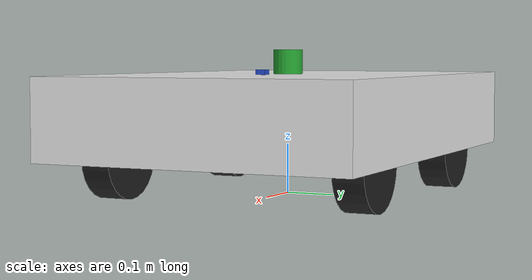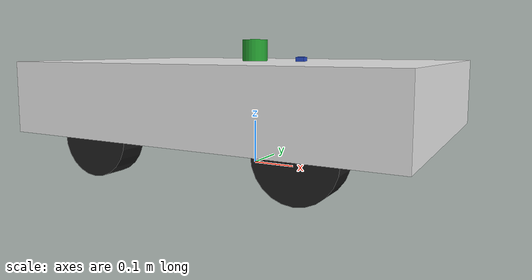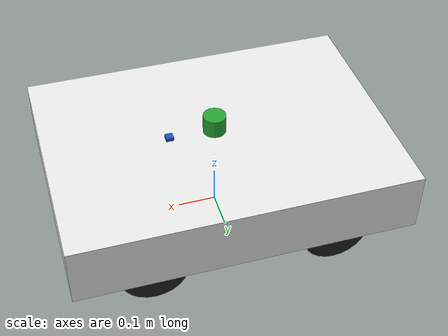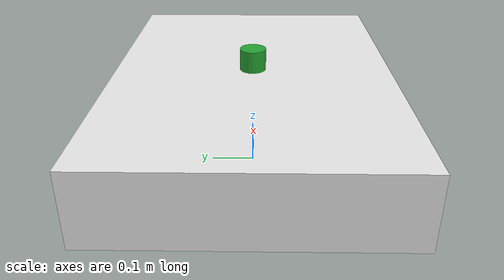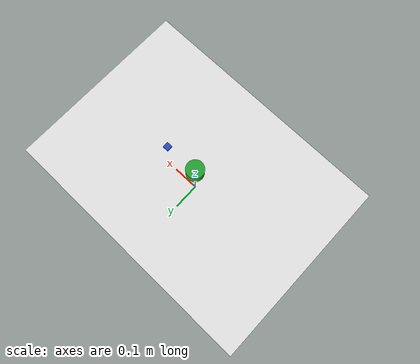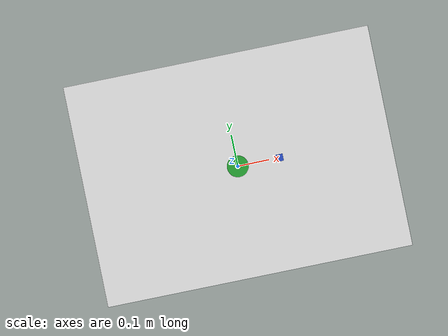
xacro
<?xml version="1.0"?>
<!-- Basic differential drive mobile base -->
<robot xmlns:xacro="http://www.ros.org/wiki/xacro" name="diffdrive_robot">
  <xacro:arg name="prefix" default="" />

  <xacro:include filename="$(find hoverboard_driver)/urdf/diffbot_description.urdf.xacro" />

  <!-- Import Rviz colors -->
  <xacro:include filename="$(find hoverboard_driver)/urdf/diffbot.materials.xacro" />

  <!-- Import diffbot ros2_control description -->
  <xacro:include filename="$(find hoverboard_driver)/ros2_control/hoverboard_driver.ros2_control.xacro"/>

  <xacro:diffbot prefix="$(arg prefix)" />

  <xacro:hoverboard_driver_ros2_control name="front_hoverboard" prefix="front_" device="/dev/front_wheel"/>
  <xacro:hoverboard_driver_ros2_control name="rear_hoverboard" prefix="rear_" device="/dev/rear_wheel"/>

</robot>

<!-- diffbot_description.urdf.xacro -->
<robot xmlns:xacro="http://www.ros.org/wiki/xacro">

  <xacro:macro name="diffbot" params="prefix">

  <!-- Constants for robot dimensions -->
  <xacro:property name="PI" value="3.1415926535897931"/>
  <xacro:property name="base_mass" value="10.0" /> <!-- arbitrary value for base mass -->
  <xacro:property name="base_width" value="0.635" />
  <xacro:property name="base_length" value="0.880" />
  <xacro:property name="base_height" value="0.16" />
  <xacro:property name="wheelbase" value="0.470" />
  <xacro:property name="wheel_mass" value="1.0" /> <!-- arbitrary value for wheel mass -->
  <xacro:property name="wheel_len" value="0.060" />
  <xacro:property name="wheel_separation" value="0.520"/>
  <xacro:property name="wheel_radius" value="0.085" />
  <xacro:property name="lidar_height" value="0.05" />
  <xacro:property name="lidar_radius" value="0.03" />

  <!-- Base Link -->
  <link name="${prefix}base_link" />

  <!-- Base Footprint Link-->

  <!-- Chassis -->

  <link name="${prefix}chassis_link">
    <collision>
      <origin xyz="0 0 0" rpy="0 0 0"/>
      <geometry>
        <box size="${base_length} ${base_width} ${base_height}"/>
      </geometry>
    </collision>

    <visual>
      <origin xyz="0 0 0" rpy="0 0 0"/>
      <geometry>
        <box size="${base_length} ${base_width} ${base_height}"/>
      </geometry>
      <material name="white"/>
    </visual>

    <inertial>
      <origin xyz="0 0 0" rpy="0 0 0"/>
      <mass value="${base_mass}"/>
        <inertia
          ixx="0.000270" ixy="0.0" ixz="0.0"
          iyy="0.000270" iyz="0.0"
          izz="0.000426"/>
    </inertial>
  </link>

    <joint name="${prefix}chassis_joint" type="fixed">
      <parent link="${prefix}base_link"/>
      <child link="${prefix}chassis_link"/>
      <origin xyz="0 0 ${base_height/2 + wheel_radius}" rpy="0 0 0"/>
      <axis xyz="0 0 1"/>
      <dynamics damping="0.2"/>
    </joint>

    <gazebo reference="${prefix}chassis_joint">
        <material>Gazebo/White</material>
    </gazebo>

    <!-- rear wheels -->

    <!-- rear right wheel -->

    <link name="${prefix}rear_right_wheel">
      <collision>
        <origin xyz="0 0 0" rpy="${PI/2} 0 ${PI/2}"/>
        <geometry>
          <cylinder length="${wheel_len}" radius="${wheel_radius}"/>
        </geometry>
      </collision>

      <visual>
        <origin xyz="0 0 0" rpy="${PI/2} 0 ${PI/2}"/>
        <geometry>
          <cylinder length="${wheel_len}" radius="${wheel_radius}"/>
        </geometry>
        <material name="black"/>
      </visual>

      <inertial>
        <origin xyz="0 0 0" rpy="${PI/2} 0 ${PI/2}"/>
        <mass value="${wheel_mass}"/>
        <inertia
          ixx="0.000270" ixy="0.0" ixz="0.0"
          iyy="0.000270" iyz="0.0"
          izz="0.000426"/>
      </inertial>

    </link>

    <joint name="${prefix}rear_right_wheel_joint" type="continuous">
      <parent link="${prefix}chassis_link"/>
      <child link="${prefix}rear_right_wheel"/>
      <origin xyz="-${wheelbase/2} -${wheel_separation/2} -${base_height/2}" rpy="0 0 ${PI/2}"/>
      <axis xyz="1 0 0"/>
      <limit effort="100.0" velocity="1.0"/>
      <dynamics damping="0.2"/>
    </joint>

    <gazebo reference="${prefix}rear_right_wheel">
        <material>Gazebo/Black</material>
    </gazebo>

    <!-- rear left wheel -->
    <link name="${prefix}rear_left_wheel">
        <collision>
          <origin xyz="0 0 0" rpy="${PI/2} 0 ${PI/2}"/>
          <geometry>
            <cylinder length="${wheel_len}" radius="${wheel_radius}"/>
          </geometry>
        </collision>

        <visual>
          <origin xyz="0 0 0" rpy="${PI/2} 0 ${PI/2}"/>
          <geometry>
            <cylinder length="${wheel_len}" radius="${wheel_radius}"/>
          </geometry>
          <material name="black"/>
        </visual>

        <inertial>
          <origin xyz="0 0 0" rpy="${PI/2} 0 ${PI/2}"/>
          <mass value="${wheel_mass}"/>
          <inertia
            ixx="0.000270" ixy="0.0" ixz="0.0"
            iyy="0.000270" iyz="0.0"
            izz="0.000426"/>
        </inertial>

    </link>

    <joint name="${prefix}rear_left_wheel_joint" type="continuous">
      <parent link="${prefix}chassis_link" />
      <child link="${prefix}rear_left_wheel" />
      <origin xyz="-${wheelbase/2} ${wheel_separation/2} -${base_height/2}" rpy="0 0 ${PI/2}"/>
      <axis xyz="1 0 0"/>
      <limit effort="100.0" velocity="1.0"/>
      <dynamics damping="0.2"/>
    </joint>

    <gazebo reference="${prefix}rear_left_wheel">
        <material>Gazebo/Black</material>
    </gazebo>

    <!-- front wheels -->

    <!-- front right wheel -->

    <link name="${prefix}front_right_wheel">

      <collision>
        <origin xyz="0 0 0" rpy="${PI/2} 0 ${PI/2}"/>
        <geometry>
          <cylinder length="${wheel_len}" radius="${wheel_radius}"/>
        </geometry>
      </collision>

      <visual>
        <origin xyz="0 0 0" rpy="${PI/2} 0 ${PI/2}"/>
        <geometry>
          <cylinder length="${wheel_len}" radius="${wheel_radius}"/>
        </geometry>
        <material name="black"/>
      </visual>

      <inertial>
        <origin xyz="0 0 0" rpy="${PI/2} 0 ${PI/2}"/>
        <mass value="${wheel_mass}"/>
        <inertia
          ixx="0.000270" ixy="0.0" ixz="0.0"
          iyy="0.000270" iyz="0.0"
          izz="0.000426"/>
      </inertial>
    </link>

    <joint name="${prefix}front_right_wheel_joint" type="continuous">
      <parent link="${prefix}chassis_link" />
      <child link="${prefix}front_right_wheel" />
      <origin xyz="${wheelbase/2} -${wheel_separation/2} -${base_height/2}" rpy="0 0 ${PI/2}"/>
      <axis xyz="1 0 0"/>
      <limit effort="100.0" velocity="1.0"/>
      <dynamics damping="0.2"/>
    </joint>

    <gazebo reference="${prefix}front_right_wheel">
        <material>Gazebo/Black</material>
    </gazebo>

    <!-- front left steering -->

    <link name="${prefix}front_left_wheel">
      <collision>
        <origin xyz="0 0 0" rpy="${PI/2} 0 ${PI/2}"/>
        <geometry>
          <cylinder length="${wheel_len}" radius="${wheel_radius}"/>
        </geometry>
      </collision>

      <visual>
        <origin xyz="0 0 0" rpy="${PI/2} 0 ${PI/2}"/>
        <geometry>
          <cylinder length="${wheel_len}" radius="${wheel_radius}"/>
        </geometry>
        <material name="black"/>
      </visual>

      <inertial>
        <origin xyz="0 0 0" rpy="${PI/2} 0 ${PI/2}"/>
        <mass value="${wheel_mass}"/>
        <inertia
          ixx="0.000270" ixy="0.0" ixz="0.0"
          iyy="0.000270" iyz="0.0"
          izz="0.000426"/>
      </inertial>

    </link>

    <joint name="${prefix}front_left_wheel_joint" type="continuous">
      <parent link="${prefix}chassis_link" />
      <child link="${prefix}front_left_wheel" />
      <origin xyz="${wheelbase/2} ${wheel_separation/2} -${base_height/2}" rpy="0 0 ${PI/2}"/>
      <axis xyz="1 0 0"/>
      <limit effort="100.0" velocity="1.0"/>
      <dynamics damping="0.2"/>
    </joint>

    <gazebo reference="${prefix}front_left_wheel">
        <material>Gazebo/Black</material>
    </gazebo>

    <!-- IMU Sensor -->
    <link name="${prefix}imu_sensor">
      <visual>
        <origin xyz="0 0 0" rpy="0 0 0"/>
        <geometry>
          <box size="0.02 0.02 0.02"/>
        </geometry>
        <material name="blue"/>
      </visual>

      <collision>
        <origin xyz="0 0 0" rpy="0 0 0"/>
        <geometry>
          <box size="0.02 0.02 0.02"/>
        </geometry>
      </collision>

      <inertial>
        <origin xyz="0 0 0" rpy="0 0 0"/>
        <mass value="0.01"/>
        <inertia
          ixx="0.000270" ixy="0.0" ixz="0.0"
          iyy="0.000270" iyz="0.0"
          izz="0.000426"/>
      </inertial>

    </link>

    <joint name="${prefix}imu_joint" type="fixed">
      <parent link="${prefix}chassis_link"/>
      <child link="${prefix}imu_sensor"/>
      <origin xyz="0.12 0 ${base_height/2}" rpy="0 0 0"/>
    </joint>

    <gazebo reference="${prefix}laser">
        <material>Gazebo/Black</material>
    </gazebo>

    <!-- LiDAR Sensor -->
    <link name="${prefix}laser_frame">
      <visual>
        <origin xyz="0 0 0" rpy="0 0 0"/>
        <geometry>
          <cylinder length="${lidar_height}" radius="${lidar_radius}"/>
        </geometry>
        <material name="green"/>
      </visual>

      <collision>
        <origin xyz="0 0 0" rpy="0 0 0"/>
        <geometry>
            <cylinder radius="${lidar_height}" length="${lidar_radius}"/>
        </geometry>
      </collision>

    </link>

    <joint name="${prefix}laser_joint" type="fixed">
      <parent link="${prefix}chassis_link"/>
      <child link="${prefix}laser_frame"/>
      <origin xyz="0 0 ${base_height/2 + lidar_height/2}" rpy="0 0 0"/>
    </joint>

    <!-- Additional definitions for front wheels omitted for brevity -->
  </xacro:macro>

</robot>
